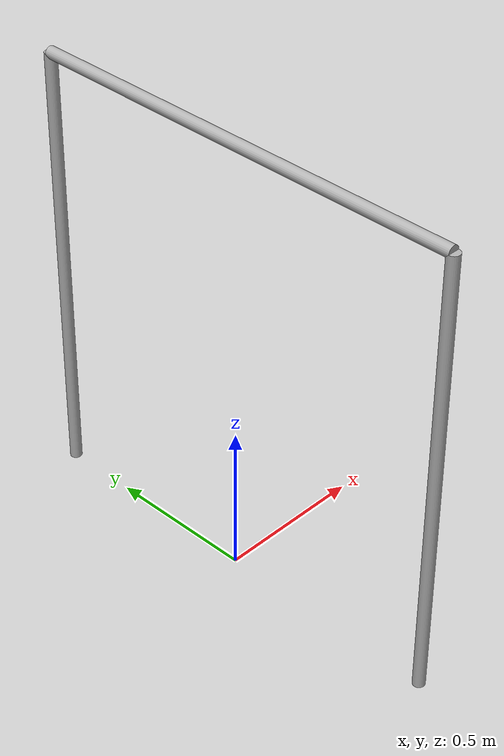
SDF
<?xml version='1.0'?>
<sdf version='1.7'>
  <model name='q_gate'>
    <static>false</static>

    <link name='top_bar'>
      <pose>0 0 1.5 1.57079 -1.57079 3.14159</pose>
      <inertial>
        <mass>1</mass>
        <inertia>
          <ixx>0.145833</ixx> <ixy>0</ixy> <ixz>0</ixz>
          <iyy>0.145833</iyy> <iyz>0</iyz>
          <izz>0.125</izz>
        </inertia>
      </inertial>
      <visual name='bar_visual'>
        <geometry>
          <cylinder>
            <radius>0.02</radius>
            <length>1.5</length>
          </cylinder>
        </geometry>
        <material>
          <ambient>0.3 0.3 0.3 1</ambient>
          <diffuse>0.7 0.7 0.7 1</diffuse>
          <specular>0.1 0.1 0.1 1</specular>
        </material>
      </visual>
      <collision name='bar_collision'>
        <geometry>
          <cylinder>
            <radius>0.02</radius>
            <length>1.5</length>
          </cylinder>
        </geometry>
      </collision>
    </link>

    <link name='left_post'>
      <pose>0 0.75 0.75 0 0 0</pose>
      <inertial>
        <mass>1</mass>
        <inertia>
          <ixx>0.145833</ixx> <ixy>0</ixy> <ixz>0</ixz>
          <iyy>0.145833</iyy> <iyz>0</iyz>
          <izz>0.125</izz>
        </inertia>
      </inertial>
      <visual name='post_visual'>
        <geometry>
          <cylinder>
            <radius>0.02</radius>
            <length>1.5</length>
          </cylinder>
        </geometry>
        <material>
          <ambient>0.3 0.3 0.3 1</ambient>
          <diffuse>0.7 0.7 0.7 1</diffuse>
          <specular>0.1 0.1 0.1 1</specular>
        </material>
      </visual>
      <collision name='post_collision'>
        <geometry>
          <cylinder>
            <radius>0.02</radius>
            <length>1.5</length>
          </cylinder>
        </geometry>
      </collision>
    </link>

    <link name='right_post'>
      <pose>0 -0.75 0.75 0 0 0</pose>
      <inertial>
        <mass>1</mass>
        <inertia>
          <ixx>0.145833</ixx> <ixy>0</ixy> <ixz>0</ixz>
          <iyy>0.145833</iyy> <iyz>0</iyz>
          <izz>0.125</izz>
        </inertia>
      </inertial>
      <visual name='post_visual'>
        <geometry>
          <cylinder>
            <radius>0.02</radius>
            <length>1.5</length>
          </cylinder>
        </geometry>
        <material>
          <ambient>0.3 0.3 0.3 1</ambient>
          <diffuse>0.7 0.7 0.7 1</diffuse>
          <specular>0.1 0.1 0.1 1</specular>
        </material>
      </visual>
      <collision name='post_collision'>
        <geometry>
          <cylinder>
            <radius>0.02</radius>
            <length>1.5</length>
          </cylinder>
        </geometry>
      </collision>
    </link>

    <joint name='top_to_left_joint' type='fixed'>
      <parent>top_bar</parent>
      <child>left_post</child>
    </joint>

    <joint name='top_to_right_joint' type='fixed'>
      <parent>top_bar</parent>
      <child>right_post</child>
    </joint>

  </model>
</sdf>
